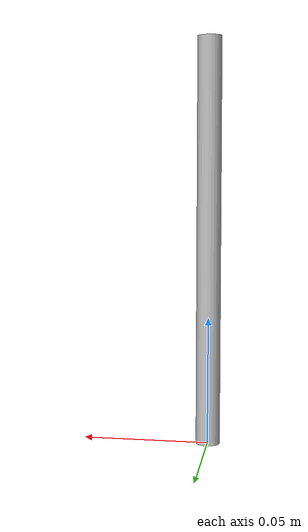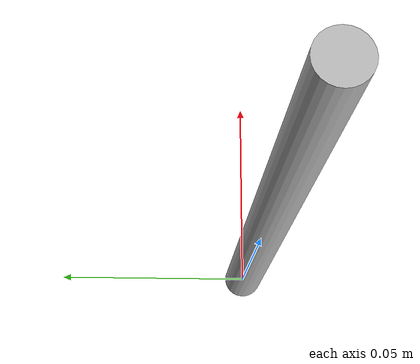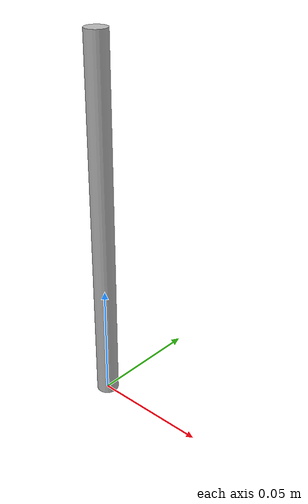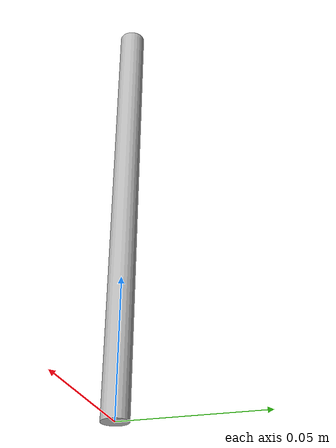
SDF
<?xml version="1.0" ?>
<sdf version="1.5">
  <model name="tube_9_5mm">
    <link name="link">
      <pose>0 0 0.08 0 0 0</pose>
      <inertial>
        <mass>0.0048</mass>
        <inertia>
          <ixx>1.0283949999999998e-05</ixx>
          <ixy>0</ixy>
          <ixz>0</ixz>
          <iyy>1.0283949999999998e-05</iyy>
          <iyz>0</iyz>
          <izz>8.789999999999999e-08</izz>
        </inertia>
      </inertial>

      <collision name="collision">
        <geometry>
          #TODO: replace with mesh of a tube
          <cylinder>
            <radius> 0.00475 </radius>
            <length> 0.16 </length>
          </cylinder>
        </geometry>
      </collision>

      <visual name="visual">
        <geometry>
          <cylinder>
            <radius> 0.00475 </radius>
            <length> 0.16 </length>
          </cylinder>
        </geometry>
        <material>
          <script>
            <uri>file://media/materials/scripts/gazebo.material</uri>
            <name>Gazebo/Chrome</name>
          </script>
        </material>
      </visual>

    </link>
  </model>
</sdf>
